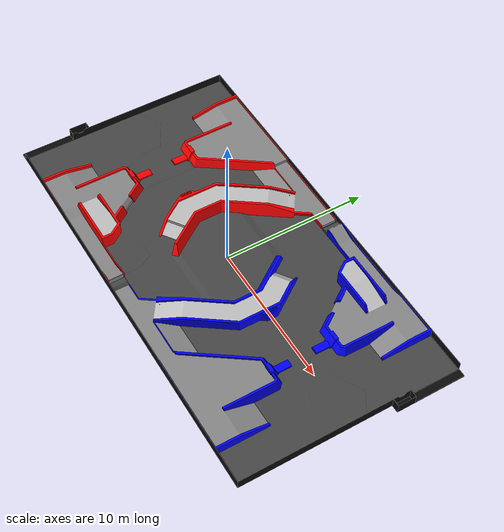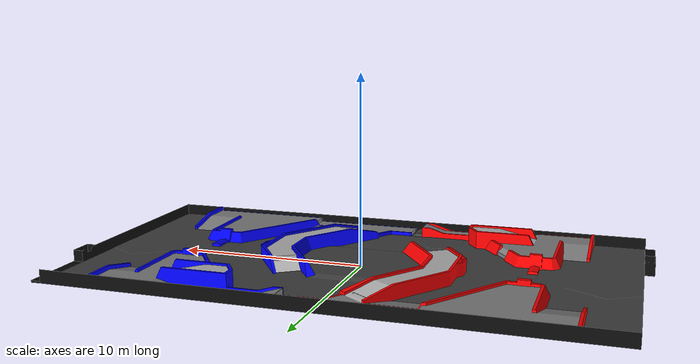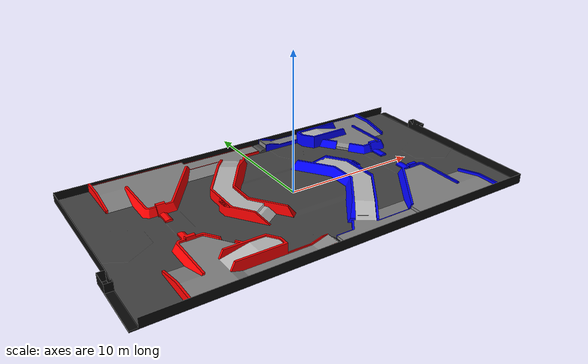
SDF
<?xml version="1.0" ?>
<!-- |    This document was autogenerated by xmacro from model.sdf.xmacro              | -->
<!-- |    EDITING THIS FILE BY HAND IS NOT RECOMMENDED                                 | -->
<sdf version="1.7">
	<!--macro defination:visual_collision_with_mesh_rgb-->
	<!--rmuc21_ground-->
	<model name="rmuc21_ground">
		<static>1</static>
		<link name="flat_ground">
			<visual name="ground_visual">
				<geometry>
					<mesh>
						<uri>model://rmuc21_ground/meshes/flat_ground.dae</uri>
					</mesh>
				</geometry>
			</visual>
			<collision name="ground_collision">
				<geometry>
					<mesh>
						<uri>model://rmuc21_ground/meshes/flat_ground.dae</uri>
					</mesh>
				</geometry>
			</collision>
			<visual name="wall_visual">
				<geometry>
					<mesh>
						<uri>model://rmuc21_ground/meshes/ground_wall.dae</uri>
					</mesh>
				</geometry>
			</visual>
			<collision name="wall_collision">
				<geometry>
					<mesh>
						<uri>model://rmuc21_ground/meshes/ground_wall.dae</uri>
					</mesh>
				</geometry>
			</collision>
		</link>
		<link name="red_elevated_ground">
			<pose>0 0 0 0 0 0</pose>
			<visual name="left_elevated_ground_visual">
				<geometry>
					<mesh>
						<uri>model://rmuc21_ground/meshes/left_elevated_ground.dae</uri>
					</mesh>
				</geometry>
			</visual>
			<collision name="left_elevated_ground_collision">
				<geometry>
					<mesh>
						<uri>model://rmuc21_ground/meshes/left_elevated_ground.dae</uri>
					</mesh>
				</geometry>
			</collision>
			<visual name="right_elevated_ground_visual">
				<geometry>
					<mesh>
						<uri>model://rmuc21_ground/meshes/right_elevated_ground.dae</uri>
					</mesh>
				</geometry>
			</visual>
			<collision name="right_elevated_ground_collision">
				<geometry>
					<mesh>
						<uri>model://rmuc21_ground/meshes/right_elevated_ground.dae</uri>
					</mesh>
				</geometry>
			</collision>
			<visual name="left_elevated_ground_wall_visual">
				<geometry>
					<mesh>
						<uri>model://rmuc21_ground/meshes/left_elevated_ground_wall.dae</uri>
					</mesh>
				</geometry>
				<material>
					<ambient>1 0 0 1</ambient>
					<diffuse>1 0 0 1</diffuse>
					<specular>1 0 0 1</specular>
				</material>
			</visual>
			<collision name="left_elevated_ground_wall_collision">
				<geometry>
					<mesh>
						<uri>model://rmuc21_ground/meshes/left_elevated_ground_wall.dae</uri>
					</mesh>
				</geometry>
			</collision>
			<visual name="right_elevated_ground_wall_visual">
				<geometry>
					<mesh>
						<uri>model://rmuc21_ground/meshes/right_elevated_ground_wall.dae</uri>
					</mesh>
				</geometry>
				<material>
					<ambient>1 0 0 1</ambient>
					<diffuse>1 0 0 1</diffuse>
					<specular>1 0 0 1</specular>
				</material>
			</visual>
			<collision name="right_elevated_ground_wall_collision">
				<geometry>
					<mesh>
						<uri>model://rmuc21_ground/meshes/right_elevated_ground_wall.dae</uri>
					</mesh>
				</geometry>
			</collision>
		</link>
		<link name="blue_elevated_ground">
			<pose>0 0 0 0 0 3.14159</pose>
			<visual name="left_elevated_ground_visual">
				<geometry>
					<mesh>
						<uri>model://rmuc21_ground/meshes/left_elevated_ground.dae</uri>
					</mesh>
				</geometry>
			</visual>
			<collision name="left_elevated_ground_collision">
				<geometry>
					<mesh>
						<uri>model://rmuc21_ground/meshes/left_elevated_ground.dae</uri>
					</mesh>
				</geometry>
			</collision>
			<visual name="right_elevated_ground_visual">
				<geometry>
					<mesh>
						<uri>model://rmuc21_ground/meshes/right_elevated_ground.dae</uri>
					</mesh>
				</geometry>
			</visual>
			<collision name="right_elevated_ground_collision">
				<geometry>
					<mesh>
						<uri>model://rmuc21_ground/meshes/right_elevated_ground.dae</uri>
					</mesh>
				</geometry>
			</collision>
			<visual name="left_elevated_ground_wall_visual">
				<geometry>
					<mesh>
						<uri>model://rmuc21_ground/meshes/left_elevated_ground_wall.dae</uri>
					</mesh>
				</geometry>
				<material>
					<ambient>0 0 1 1</ambient>
					<diffuse>0 0 1 1</diffuse>
					<specular>0 0 1 1</specular>
				</material>
			</visual>
			<collision name="left_elevated_ground_wall_collision">
				<geometry>
					<mesh>
						<uri>model://rmuc21_ground/meshes/left_elevated_ground_wall.dae</uri>
					</mesh>
				</geometry>
			</collision>
			<visual name="right_elevated_ground_wall_visual">
				<geometry>
					<mesh>
						<uri>model://rmuc21_ground/meshes/right_elevated_ground_wall.dae</uri>
					</mesh>
				</geometry>
				<material>
					<ambient>0 0 1 1</ambient>
					<diffuse>0 0 1 1</diffuse>
					<specular>0 0 1 1</specular>
				</material>
			</visual>
			<collision name="right_elevated_ground_wall_collision">
				<geometry>
					<mesh>
						<uri>model://rmuc21_ground/meshes/right_elevated_ground_wall.dae</uri>
					</mesh>
				</geometry>
			</collision>
		</link>
	</model>
</sdf>
